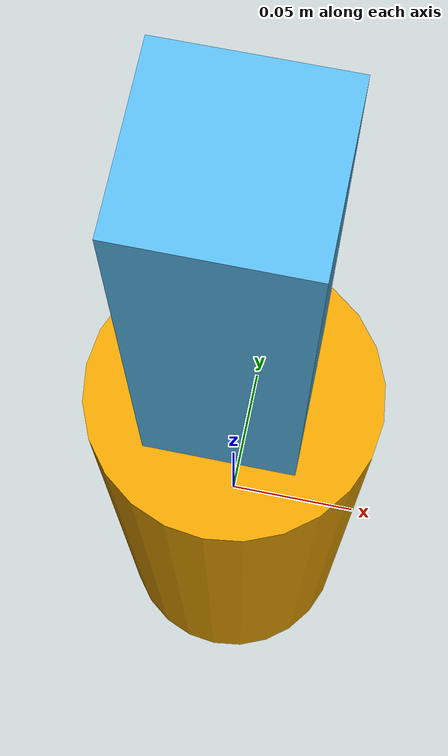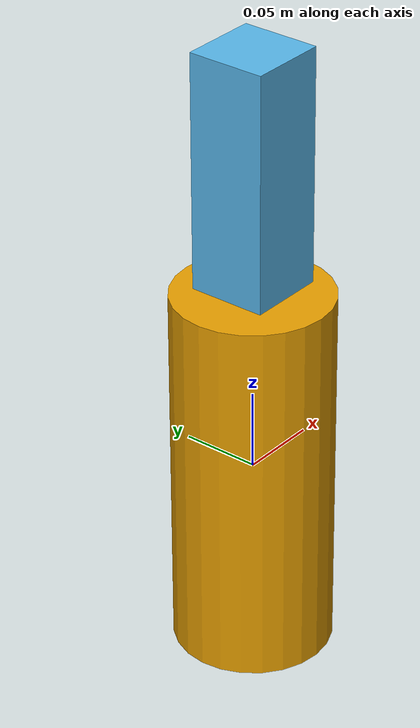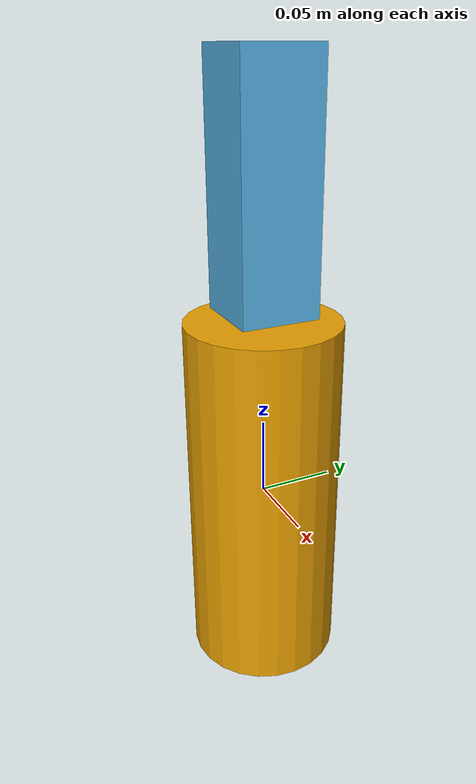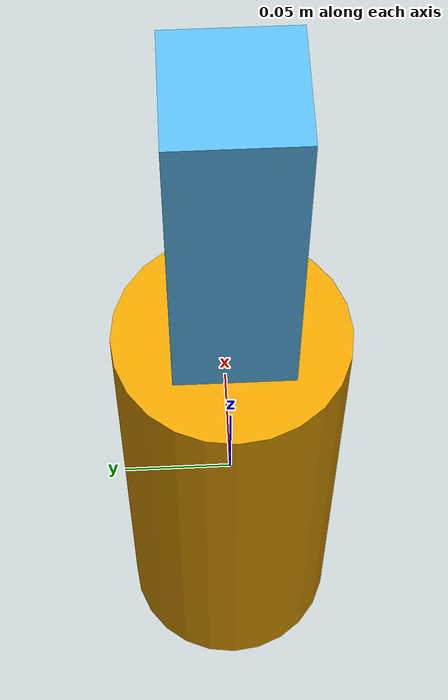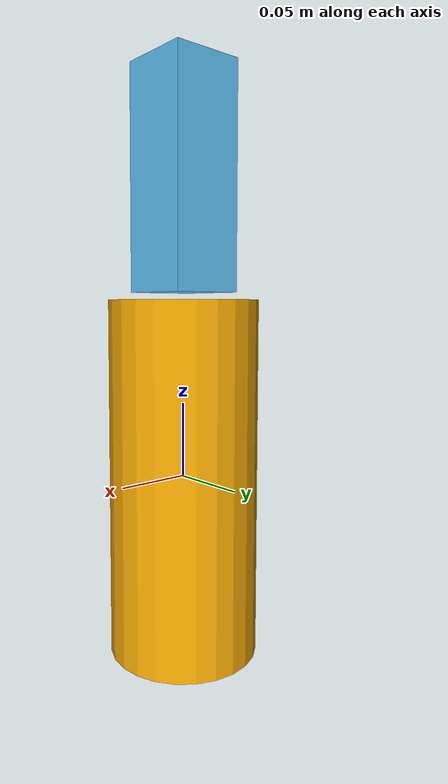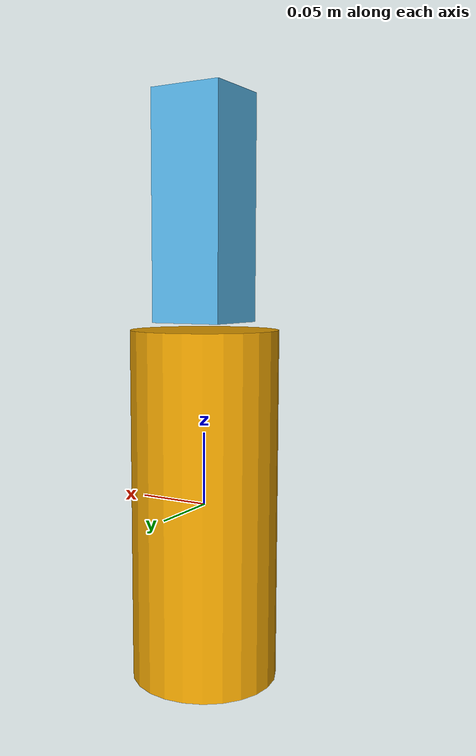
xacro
<?xml version="1.0"?>
<robot name="two_wheel_robot" xmlns:xacro="http://ros.org/wki/xacro">

<link name="base_link">
    <inertial>
        <mass value="10" />
        <inertia ixx="0.4" ixy="0.0" ixz="0.0" iyy="0.4" iyz="0.0" izz="0.2"/>
    </inertial>
    <collision>
      <geometry>
        <cylinder radius="0.05" length="0.24" />
      </geometry>
        </collision>
    <visual>
      <geometry>
        <cylinder radius="0.05" length="0.24" />
      </geometry>
    </visual>
  </link>

  <link name="second_link">
    <inertial>
        <mass value="0.18" />
        <inertia ixx="0.0002835" ixy="0.0" ixz="0.0" iyy="0.0002835" iyz="0.0" izz="0.000324" />
    </inertial>
    <origin rpy="0.0 0.0 0.0" xyz="0.0 0.0 0.0" />
    <collision>
      <geometry>
        <box size="0.05 0.05 0.15" />
      </geometry>
    </collision>
    <visual>
      <geometry>
        <box size="0.05 0.05 0.15" />
      </geometry>
    </visual>
  </link>

  <joint name="base_to_second_joint" type="continuous">
    <parent link="base_link"/>
    <child link="second_link"/>
    <axis xyz="1 0 0"/>
    <origin xyz="0.0 0.0 0.2" rpy="0.0 0.0 0.0"/>
  </joint>

  <!--                GAZEBO RELATED PART                             -->

  <!-- ROS Control plugin for Gazebo -->
  <gazebo>
    <plugin name="gazebo_ros_control" filename="libgazebo_ros_control.so">
      <robotNamespace>/simple_model</robotNamespace>
    </plugin>
  </gazebo>

  <!-- transmission -->
  <transmission name="base_to_second_trans">
    <type>transmission_interface/SimpleTransmission</type>
    <actuator name="motor1">
      <mechanicalReduction>1</mechanicalReduction>
    </actuator>
    <joint name="base_to_second_joint">
      <hardwareInterface>EffortJointInterface</hardwareInterface>
    </joint>
  </transmission>
</robot>`
